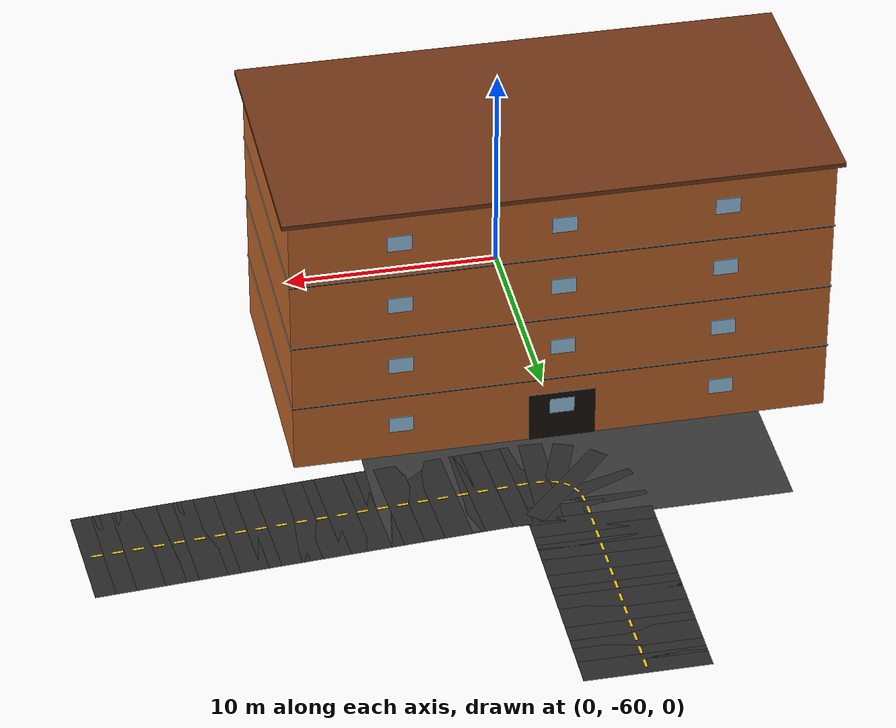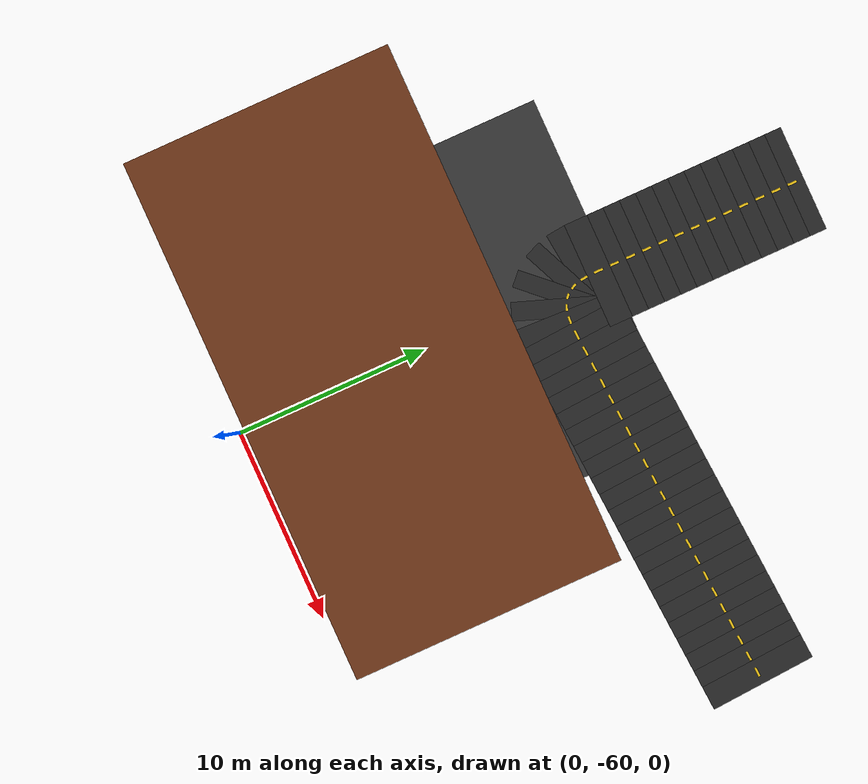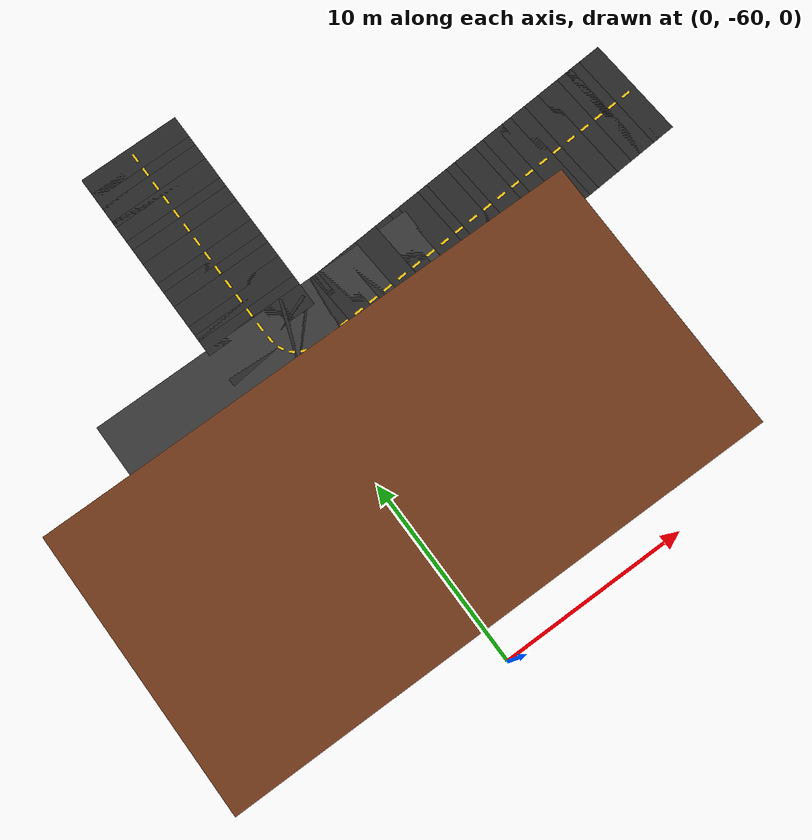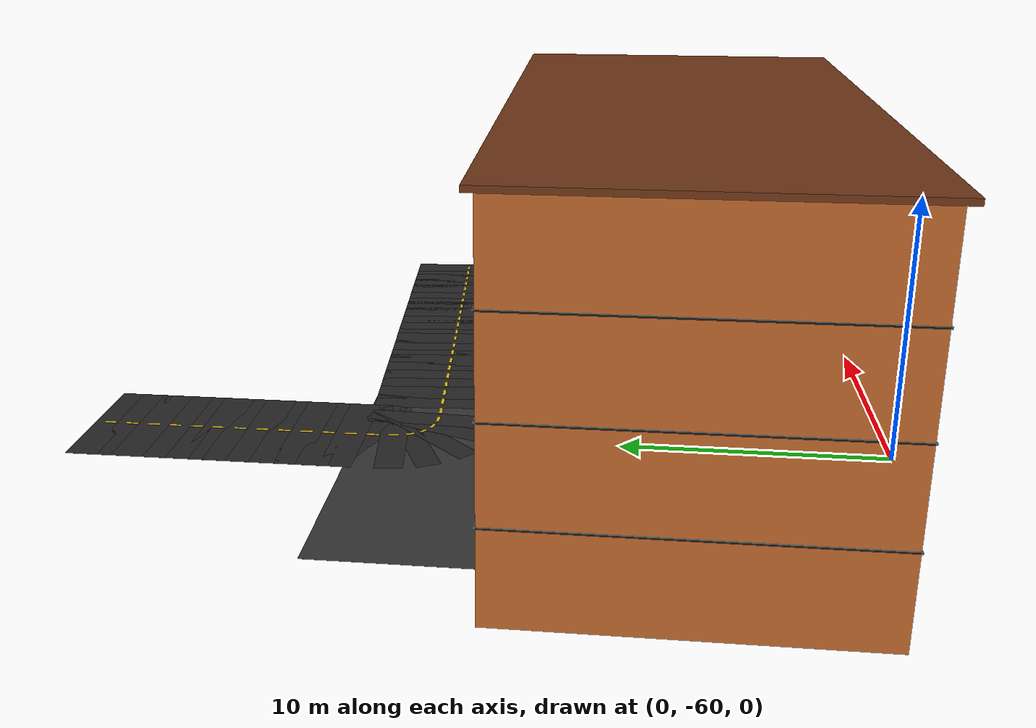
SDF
<sdf version="1.7">
 <world name="campus_delivery">
  <model name="campus_roads">
   <static>true</static>
   <link name="south_service_loop_0000">
    <pose>0.000 -40.562 0.002 0 0 1.570796</pose>
    <visual name="visual">
     <geometry><box><size>1.225 5.500 0.004</size></box></geometry>
     <material><ambient>0.160 0.160 0.160 1.000</ambient><diffuse>0.160 0.160 0.160 1.000</diffuse></material>
    </visual>
    <visual name="center_line">
     <pose>0 0 0.008 0 0 0</pose>
     <geometry><box><size>0.481 0.120 0.012</size></box></geometry>
     <material><ambient>0.950 0.780 0.080 1.000</ambient><diffuse>0.950 0.780 0.080 1.000</diffuse></material>
    </visual>
   </link>
   <link name="south_service_loop_0001">
    <pose>0.000 -39.688 0.002 0 0 1.570796</pose>
    <visual name="visual">
     <geometry><box><size>1.225 5.500 0.004</size></box></geometry>
     <material><ambient>0.160 0.160 0.160 1.000</ambient><diffuse>0.160 0.160 0.160 1.000</diffuse></material>
    </visual>
    <visual name="center_line">
     <pose>0 0 0.008 0 0 0</pose>
     <geometry><box><size>0.481 0.120 0.012</size></box></geometry>
     <material><ambient>0.950 0.780 0.080 1.000</ambient><diffuse>0.950 0.780 0.080 1.000</diffuse></material>
    </visual>
   </link>
   <link name="south_service_loop_0002">
    <pose>0.000 -38.812 0.002 0 0 1.570796</pose>
    <visual name="visual">
     <geometry><box><size>1.225 5.500 0.004</size></box></geometry>
     <material><ambient>0.160 0.160 0.160 1.000</ambient><diffuse>0.160 0.160 0.160 1.000</diffuse></material>
    </visual>
    <visual name="center_line">
     <pose>0 0 0.008 0 0 0</pose>
     <geometry><box><size>0.481 0.120 0.012</size></box></geometry>
     <material><ambient>0.950 0.780 0.080 1.000</ambient><diffuse>0.950 0.780 0.080 1.000</diffuse></material>
    </visual>
   </link>
   <link name="south_service_loop_0003">
    <pose>0.000 -37.938 0.002 0 0 1.570796</pose>
    <visual name="visual">
     <geometry><box><size>1.225 5.500 0.004</size></box></geometry>
     <material><ambient>0.160 0.160 0.160 1.000</ambient><diffuse>0.160 0.160 0.160 1.000</diffuse></material>
    </visual>
    <visual name="center_line">
     <pose>0 0 0.008 0 0 0</pose>
     <geometry><box><size>0.481 0.120 0.012</size></box></geometry>
     <material><ambient>0.950 0.780 0.080 1.000</ambient><diffuse>0.950 0.780 0.080 1.000</diffuse></material>
    </visual>
   </link>
   <link name="south_service_loop_0004">
    <pose>0.000 -37.062 0.002 0 0 1.570796</pose>
    <visual name="visual">
     <geometry><box><size>1.225 5.500 0.004</size></box></geometry>
     <material><ambient>0.160 0.160 0.160 1.000</ambient><diffuse>0.160 0.160 0.160 1.000</diffuse></material>
    </visual>
    <visual name="center_line">
     <pose>0 0 0.008 0 0 0</pose>
     <geometry><box><size>0.481 0.120 0.012</size></box></geometry>
     <material><ambient>0.950 0.780 0.080 1.000</ambient><diffuse>0.950 0.780 0.080 1.000</diffuse></material>
    </visual>
   </link>
   <link name="south_service_loop_0005">
    <pose>0.000 -36.188 0.002 0 0 1.570796</pose>
    <visual name="visual">
     <geometry><box><size>1.225 5.500 0.004</size></box></geometry>
     <material><ambient>0.160 0.160 0.160 1.000</ambient><diffuse>0.160 0.160 0.160 1.000</diffuse></material>
    </visual>
    <visual name="center_line">
     <pose>0 0 0.008 0 0 0</pose>
     <geometry><box><size>0.481 0.120 0.012</size></box></geometry>
     <material><ambient>0.950 0.780 0.080 1.000</ambient><diffuse>0.950 0.780 0.080 1.000</diffuse></material>
    </visual>
   </link>
   <link name="south_service_loop_0006">
    <pose>0.000 -35.312 0.002 0 0 1.570796</pose>
    <visual name="visual">
     <geometry><box><size>1.225 5.500 0.004</size></box></geometry>
     <material><ambient>0.160 0.160 0.160 1.000</ambient><diffuse>0.160 0.160 0.160 1.000</diffuse></material>
    </visual>
    <visual name="center_line">
     <pose>0 0 0.008 0 0 0</pose>
     <geometry><box><size>0.481 0.120 0.012</size></box></geometry>
     <material><ambient>0.950 0.780 0.080 1.000</ambient><diffuse>0.950 0.780 0.080 1.000</diffuse></material>
    </visual>
   </link>
   <link name="south_service_loop_0007">
    <pose>0.000 -34.438 0.002 0 0 1.570796</pose>
    <visual name="visual">
     <geometry><box><size>1.225 5.500 0.004</size></box></geometry>
     <material><ambient>0.160 0.160 0.160 1.000</ambient><diffuse>0.160 0.160 0.160 1.000</diffuse></material>
    </visual>
    <visual name="center_line">
     <pose>0 0 0.008 0 0 0</pose>
     <geometry><box><size>0.481 0.120 0.012</size></box></geometry>
     <material><ambient>0.950 0.780 0.080 1.000</ambient><diffuse>0.950 0.780 0.080 1.000</diffuse></material>
    </visual>
   </link>
   <link name="south_service_loop_0008">
    <pose>0.000 -33.562 0.002 0 0 1.570796</pose>
    <visual name="visual">
     <geometry><box><size>1.225 5.500 0.004</size></box></geometry>
     <material><ambient>0.160 0.160 0.160 1.000</ambient><diffuse>0.160 0.160 0.160 1.000</diffuse></material>
    </visual>
    <visual name="center_line">
     <pose>0 0 0.008 0 0 0</pose>
     <geometry><box><size>0.481 0.120 0.012</size></box></geometry>
     <material><ambient>0.950 0.780 0.080 1.000</ambient><diffuse>0.950 0.780 0.080 1.000</diffuse></material>
    </visual>
   </link>
   <link name="south_service_loop_0009">
    <pose>0.000 -32.688 0.002 0 0 1.570796</pose>
    <visual name="visual">
     <geometry><box><size>1.225 5.500 0.004</size></box></geometry>
     <material><ambient>0.160 0.160 0.160 1.000</ambient><diffuse>0.160 0.160 0.160 1.000</diffuse></material>
    </visual>
    <visual name="center_line">
     <pose>0 0 0.008 0 0 0</pose>
     <geometry><box><size>0.481 0.120 0.012</size></box></geometry>
     <material><ambient>0.950 0.780 0.080 1.000</ambient><diffuse>0.950 0.780 0.080 1.000</diffuse></material>
    </visual>
   </link>
   <link name="south_service_loop_0010">
    <pose>0.000 -31.812 0.002 0 0 1.570796</pose>
    <visual name="visual">
     <geometry><box><size>1.225 5.500 0.004</size></box></geometry>
     <material><ambient>0.160 0.160 0.160 1.000</ambient><diffuse>0.160 0.160 0.160 1.000</diffuse></material>
    </visual>
    <visual name="center_line">
     <pose>0 0 0.008 0 0 0</pose>
     <geometry><box><size>0.481 0.120 0.012</size></box></geometry>
     <material><ambient>0.950 0.780 0.080 1.000</ambient><diffuse>0.950 0.780 0.080 1.000</diffuse></material>
    </visual>
   </link>
   <link name="south_service_loop_0011">
    <pose>0.000 -30.938 0.002 0 0 1.570796</pose>
    <visual name="visual">
     <geometry><box><size>1.225 5.500 0.004</size></box></geometry>
     <material><ambient>0.160 0.160 0.160 1.000</ambient><diffuse>0.160 0.160 0.160 1.000</diffuse></material>
    </visual>
    <visual name="center_line">
     <pose>0 0 0.008 0 0 0</pose>
     <geometry><box><size>0.481 0.120 0.012</size></box></geometry>
     <material><ambient>0.950 0.780 0.080 1.000</ambient><diffuse>0.950 0.780 0.080 1.000</diffuse></material>
    </visual>
   </link>
   <link name="south_service_loop_0012">
    <pose>0.000 -30.062 0.002 0 0 1.570796</pose>
    <visual name="visual">
     <geometry><box><size>1.225 5.500 0.004</size></box></geometry>
     <material><ambient>0.160 0.160 0.160 1.000</ambient><diffuse>0.160 0.160 0.160 1.000</diffuse></material>
    </visual>
    <visual name="center_line">
     <pose>0 0 0.008 0 0 0</pose>
     <geometry><box><size>0.481 0.120 0.012</size></box></geometry>
     <material><ambient>0.950 0.780 0.080 1.000</ambient><diffuse>0.950 0.780 0.080 1.000</diffuse></material>
    </visual>
   </link>
   <link name="south_service_loop_0157">
    <pose>21.278 -41.581 0.002 0 0 -3.075024</pose>
    <visual name="visual">
     <geometry><box><size>1.249 5.500 0.004</size></box></geometry>
     <material><ambient>0.160 0.160 0.160 1.000</ambient><diffuse>0.160 0.160 0.160 1.000</diffuse></material>
    </visual>
    <visual name="center_line">
     <pose>0 0 0.008 0 0 0</pose>
     <geometry><box><size>0.494 0.120 0.012</size></box></geometry>
     <material><ambient>0.950 0.780 0.080 1.000</ambient><diffuse>0.950 0.780 0.080 1.000</diffuse></material>
    </visual>
   </link>
   <link name="south_service_loop_0158">
    <pose>20.381 -41.641 0.002 0 0 -3.075024</pose>
    <visual name="visual">
     <geometry><box><size>1.249 5.500 0.004</size></box></geometry>
     <material><ambient>0.160 0.160 0.160 1.000</ambient><diffuse>0.160 0.160 0.160 1.000</diffuse></material>
    </visual>
    <visual name="center_line">
     <pose>0 0 0.008 0 0 0</pose>
     <geometry><box><size>0.494 0.120 0.012</size></box></geometry>
     <material><ambient>0.950 0.780 0.080 1.000</ambient><diffuse>0.950 0.780 0.080 1.000</diffuse></material>
    </visual>
   </link>
   <link name="south_service_loop_0159">
    <pose>19.484 -41.701 0.002 0 0 -3.075024</pose>
    <visual name="visual">
     <geometry><box><size>1.249 5.500 0.004</size></box></geometry>
     <material><ambient>0.160 0.160 0.160 1.000</ambient><diffuse>0.160 0.160 0.160 1.000</diffuse></material>
    </visual>
    <visual name="center_line">
     <pose>0 0 0.008 0 0 0</pose>
     <geometry><box><size>0.494 0.120 0.012</size></box></geometry>
     <material><ambient>0.950 0.780 0.080 1.000</ambient><diffuse>0.950 0.780 0.080 1.000</diffuse></material>
    </visual>
   </link>
   <link name="south_service_loop_0160">
    <pose>18.587 -41.761 0.002 0 0 -3.075024</pose>
    <visual name="visual">
     <geometry><box><size>1.249 5.500 0.004</size></box></geometry>
     <material><ambient>0.160 0.160 0.160 1.000</ambient><diffuse>0.160 0.160 0.160 1.000</diffuse></material>
    </visual>
    <visual name="center_line">
     <pose>0 0 0.008 0 0 0</pose>
     <geometry><box><size>0.494 0.120 0.012</size></box></geometry>
     <material><ambient>0.950 0.780 0.080 1.000</ambient><diffuse>0.950 0.780 0.080 1.000</diffuse></material>
    </visual>
   </link>
   <link name="south_service_loop_0161">
    <pose>17.691 -41.821 0.002 0 0 -3.075024</pose>
    <visual name="visual">
     <geometry><box><size>1.249 5.500 0.004</size></box></geometry>
     <material><ambient>0.160 0.160 0.160 1.000</ambient><diffuse>0.160 0.160 0.160 1.000</diffuse></material>
    </visual>
    <visual name="center_line">
     <pose>0 0 0.008 0 0 0</pose>
     <geometry><box><size>0.494 0.120 0.012</size></box></geometry>
     <material><ambient>0.950 0.780 0.080 1.000</ambient><diffuse>0.950 0.780 0.080 1.000</diffuse></material>
    </visual>
   </link>
   <link name="south_service_loop_0162">
    <pose>16.794 -41.880 0.002 0 0 -3.075024</pose>
    <visual name="visual">
     <geometry><box><size>1.249 5.500 0.004</size></box></geometry>
     <material><ambient>0.160 0.160 0.160 1.000</ambient><diffuse>0.160 0.160 0.160 1.000</diffuse></material>
    </visual>
    <visual name="center_line">
     <pose>0 0 0.008 0 0 0</pose>
     <geometry><box><size>0.494 0.120 0.012</size></box></geometry>
     <material><ambient>0.950 0.780 0.080 1.000</ambient><diffuse>0.950 0.780 0.080 1.000</diffuse></material>
    </visual>
   </link>
   <link name="south_service_loop_0163">
    <pose>15.897 -41.940 0.002 0 0 -3.075024</pose>
    <visual name="visual">
     <geometry><box><size>1.249 5.500 0.004</size></box></geometry>
     <material><ambient>0.160 0.160 0.160 1.000</ambient><diffuse>0.160 0.160 0.160 1.000</diffuse></material>
    </visual>
    <visual name="center_line">
     <pose>0 0 0.008 0 0 0</pose>
     <geometry><box><size>0.494 0.120 0.012</size></box></geometry>
     <material><ambient>0.950 0.780 0.080 1.000</ambient><diffuse>0.950 0.780 0.080 1.000</diffuse></material>
    </visual>
   </link>
   <link name="south_service_loop_0164">
    <pose>15.000 -42.000 0.002 0 0 -3.075024</pose>
    <visual name="visual">
     <geometry><box><size>1.249 5.500 0.004</size></box></geometry>
     <material><ambient>0.160 0.160 0.160 1.000</ambient><diffuse>0.160 0.160 0.160 1.000</diffuse></material>
    </visual>
    <visual name="center_line">
     <pose>0 0 0.008 0 0 0</pose>
     <geometry><box><size>0.494 0.120 0.012</size></box></geometry>
     <material><ambient>0.950 0.780 0.080 1.000</ambient><diffuse>0.950 0.780 0.080 1.000</diffuse></material>
    </visual>
   </link>
   <link name="south_service_loop_0165">
    <pose>14.103 -42.060 0.002 0 0 -3.075024</pose>
    <visual name="visual">
     <geometry><box><size>1.249 5.500 0.004</size></box></geometry>
     <material><ambient>0.160 0.160 0.160 1.000</ambient><diffuse>0.160 0.160 0.160 1.000</diffuse></material>
    </visual>
    <visual name="center_line">
     <pose>0 0 0.008 0 0 0</pose>
     <geometry><box><size>0.494 0.120 0.012</size></box></geometry>
     <material><ambient>0.950 0.780 0.080 1.000</ambient><diffuse>0.950 0.780 0.080 1.000</diffuse></material>
    </visual>
   </link>
   <link name="south_service_loop_0166">
    <pose>13.206 -42.120 0.002 0 0 -3.075024</pose>
    <visual name="visual">
     <geometry><box><size>1.249 5.500 0.004</size></box></geometry>
     <material><ambient>0.160 0.160 0.160 1.000</ambient><diffuse>0.160 0.160 0.160 1.000</diffuse></material>
    </visual>
    <visual name="center_line">
     <pose>0 0 0.008 0 0 0</pose>
     <geometry><box><size>0.494 0.120 0.012</size></box></geometry>
     <material><ambient>0.950 0.780 0.080 1.000</ambient><diffuse>0.950 0.780 0.080 1.000</diffuse></material>
    </visual>
   </link>
   <link name="south_service_loop_0167">
    <pose>12.309 -42.179 0.002 0 0 -3.075024</pose>
    <visual name="visual">
     <geometry><box><size>1.249 5.500 0.004</size></box></geometry>
     <material><ambient>0.160 0.160 0.160 1.000</ambient><diffuse>0.160 0.160 0.160 1.000</diffuse></material>
    </visual>
    <visual name="center_line">
     <pose>0 0 0.008 0 0 0</pose>
     <geometry><box><size>0.494 0.120 0.012</size></box></geometry>
     <material><ambient>0.950 0.780 0.080 1.000</ambient><diffuse>0.950 0.780 0.080 1.000</diffuse></material>
    </visual>
   </link>
   <link name="south_service_loop_0168">
    <pose>11.413 -42.239 0.002 0 0 -3.075024</pose>
    <visual name="visual">
     <geometry><box><size>1.249 5.500 0.004</size></box></geometry>
     <material><ambient>0.160 0.160 0.160 1.000</ambient><diffuse>0.160 0.160 0.160 1.000</diffuse></material>
    </visual>
    <visual name="center_line">
     <pose>0 0 0.008 0 0 0</pose>
     <geometry><box><size>0.494 0.120 0.012</size></box></geometry>
     <material><ambient>0.950 0.780 0.080 1.000</ambient><diffuse>0.950 0.780 0.080 1.000</diffuse></material>
    </visual>
   </link>
   <link name="south_service_loop_0169">
    <pose>10.516 -42.299 0.002 0 0 -3.075024</pose>
    <visual name="visual">
     <geometry><box><size>1.249 5.500 0.004</size></box></geometry>
     <material><ambient>0.160 0.160 0.160 1.000</ambient><diffuse>0.160 0.160 0.160 1.000</diffuse></material>
    </visual>
    <visual name="center_line">
     <pose>0 0 0.008 0 0 0</pose>
     <geometry><box><size>0.494 0.120 0.012</size></box></geometry>
     <material><ambient>0.950 0.780 0.080 1.000</ambient><diffuse>0.950 0.780 0.080 1.000</diffuse></material>
    </visual>
   </link>
   <link name="south_service_loop_0170">
    <pose>9.619 -42.359 0.002 0 0 -3.075024</pose>
    <visual name="visual">
     <geometry><box><size>1.249 5.500 0.004</size></box></geometry>
     <material><ambient>0.160 0.160 0.160 1.000</ambient><diffuse>0.160 0.160 0.160 1.000</diffuse></material>
    </visual>
    <visual name="center_line">
     <pose>0 0 0.008 0 0 0</pose>
     <geometry><box><size>0.494 0.120 0.012</size></box></geometry>
     <material><ambient>0.950 0.780 0.080 1.000</ambient><diffuse>0.950 0.780 0.080 1.000</diffuse></material>
    </visual>
   </link>
   <link name="south_service_loop_0171">
    <pose>8.722 -42.419 0.002 0 0 -3.075024</pose>
    <visual name="visual">
     <geometry><box><size>1.249 5.500 0.004</size></box></geometry>
     <material><ambient>0.160 0.160 0.160 1.000</ambient><diffuse>0.160 0.160 0.160 1.000</diffuse></material>
    </visual>
    <visual name="center_line">
     <pose>0 0 0.008 0 0 0</pose>
     <geometry><box><size>0.494 0.120 0.012</size></box></geometry>
     <material><ambient>0.950 0.780 0.080 1.000</ambient><diffuse>0.950 0.780 0.080 1.000</diffuse></material>
    </visual>
   </link>
   <link name="south_service_loop_0172">
    <pose>7.825 -42.478 0.002 0 0 -3.075024</pose>
    <visual name="visual">
     <geometry><box><size>1.249 5.500 0.004</size></box></geometry>
     <material><ambient>0.160 0.160 0.160 1.000</ambient><diffuse>0.160 0.160 0.160 1.000</diffuse></material>
    </visual>
    <visual name="center_line">
     <pose>0 0 0.008 0 0 0</pose>
     <geometry><box><size>0.494 0.120 0.012</size></box></geometry>
     <material><ambient>0.950 0.780 0.080 1.000</ambient><diffuse>0.950 0.780 0.080 1.000</diffuse></material>
    </visual>
   </link>
   <link name="south_service_loop_0173">
    <pose>6.928 -42.538 0.002 0 0 -3.075024</pose>
    <visual name="visual">
     <geometry><box><size>1.249 5.500 0.004</size></box></geometry>
     <material><ambient>0.160 0.160 0.160 1.000</ambient><diffuse>0.160 0.160 0.160 1.000</diffuse></material>
    </visual>
    <visual name="center_line">
     <pose>0 0 0.008 0 0 0</pose>
     <geometry><box><size>0.494 0.120 0.012</size></box></geometry>
     <material><ambient>0.950 0.780 0.080 1.000</ambient><diffuse>0.950 0.780 0.080 1.000</diffuse></material>
    </visual>
   </link>
   <link name="south_service_loop_0174">
    <pose>6.031 -42.598 0.002 0 0 -3.075024</pose>
    <visual name="visual">
     <geometry><box><size>1.249 5.500 0.004</size></box></geometry>
     <material><ambient>0.160 0.160 0.160 1.000</ambient><diffuse>0.160 0.160 0.160 1.000</diffuse></material>
    </visual>
    <visual name="center_line">
     <pose>0 0 0.008 0 0 0</pose>
     <geometry><box><size>0.494 0.120 0.012</size></box></geometry>
     <material><ambient>0.950 0.780 0.080 1.000</ambient><diffuse>0.950 0.780 0.080 1.000</diffuse></material>
    </visual>
   </link>
   <link name="south_service_loop_0175">
    <pose>5.135 -42.658 0.002 0 0 -3.075024</pose>
    <visual name="visual">
     <geometry><box><size>1.249 5.500 0.004</size></box></geometry>
     <material><ambient>0.160 0.160 0.160 1.000</ambient><diffuse>0.160 0.160 0.160 1.000</diffuse></material>
    </visual>
    <visual name="center_line">
     <pose>0 0 0.008 0 0 0</pose>
     <geometry><box><size>0.494 0.120 0.012</size></box></geometry>
     <material><ambient>0.950 0.780 0.080 1.000</ambient><diffuse>0.950 0.780 0.080 1.000</diffuse></material>
    </visual>
   </link>
   <link name="south_service_loop_0176">
    <pose>4.238 -42.717 0.002 0 0 -3.075024</pose>
    <visual name="visual">
     <geometry><box><size>1.249 5.500 0.004</size></box></geometry>
     <material><ambient>0.160 0.160 0.160 1.000</ambient><diffuse>0.160 0.160 0.160 1.000</diffuse></material>
    </visual>
    <visual name="center_line">
     <pose>0 0 0.008 0 0 0</pose>
     <geometry><box><size>0.494 0.120 0.012</size></box></geometry>
     <material><ambient>0.950 0.780 0.080 1.000</ambient><diffuse>0.950 0.780 0.080 1.000</diffuse></material>
    </visual>
   </link>
   <link name="south_service_loop_0177">
    <pose>3.341 -42.777 0.002 0 0 -3.075024</pose>
    <visual name="visual">
     <geometry><box><size>1.249 5.500 0.004</size></box></geometry>
     <material><ambient>0.160 0.160 0.160 1.000</ambient><diffuse>0.160 0.160 0.160 1.000</diffuse></material>
    </visual>
    <visual name="center_line">
     <pose>0 0 0.008 0 0 0</pose>
     <geometry><box><size>0.494 0.120 0.012</size></box></geometry>
     <material><ambient>0.950 0.780 0.080 1.000</ambient><diffuse>0.950 0.780 0.080 1.000</diffuse></material>
    </visual>
   </link>
   <link name="south_service_loop_0178">
    <pose>2.444 -42.837 0.002 0 0 -3.075024</pose>
    <visual name="visual">
     <geometry><box><size>1.249 5.500 0.004</size></box></geometry>
     <material><ambient>0.160 0.160 0.160 1.000</ambient><diffuse>0.160 0.160 0.160 1.000</diffuse></material>
    </visual>
    <visual name="center_line">
     <pose>0 0 0.008 0 0 0</pose>
     <geometry><box><size>0.494 0.120 0.012</size></box></geometry>
     <material><ambient>0.950 0.780 0.080 1.000</ambient><diffuse>0.950 0.780 0.080 1.000</diffuse></material>
    </visual>
   </link>
   <link name="south_service_loop_0179">
    <pose>1.636 -42.851 0.002 0 0 3.096931</pose>
    <visual name="visual">
     <geometry><box><size>1.069 5.500 0.004</size></box></geometry>
     <material><ambient>0.160 0.160 0.160 1.000</ambient><diffuse>0.160 0.160 0.160 1.000</diffuse></material>
    </visual>
    <visual name="center_line">
     <pose>0 0 0.008 0 0 0</pose>
     <geometry><box><size>0.396 0.120 0.012</size></box></geometry>
     <material><ambient>0.950 0.780 0.080 1.000</ambient><diffuse>0.950 0.780 0.080 1.000</diffuse></material>
    </visual>
   </link>
   <link name="south_service_loop_0180">
    <pose>0.998 -42.733 0.002 0 0 2.793511</pose>
    <visual name="visual">
     <geometry><box><size>0.944 5.500 0.004</size></box></geometry>
     <material><ambient>0.160 0.160 0.160 1.000</ambient><diffuse>0.160 0.160 0.160 1.000</diffuse></material>
    </visual>
    <visual name="center_line">
     <pose>0 0 0.008 0 0 0</pose>
     <geometry><box><size>0.327 0.120 0.012</size></box></geometry>
     <material><ambient>0.950 0.780 0.080 1.000</ambient><diffuse>0.950 0.780 0.080 1.000</diffuse></material>
    </visual>
   </link>
   <link name="south_service_loop_0181">
    <pose>0.519 -42.445 0.002 0 0 2.389479</pose>
    <visual name="visual">
     <geometry><box><size>0.897 5.500 0.004</size></box></geometry>
     <material><ambient>0.160 0.160 0.160 1.000</ambient><diffuse>0.160 0.160 0.160 1.000</diffuse></material>
    </visual>
    <visual name="center_line">
     <pose>0 0 0.008 0 0 0</pose>
     <geometry><box><size>0.301 0.120 0.012</size></box></geometry>
     <material><ambient>0.950 0.780 0.080 1.000</ambient><diffuse>0.950 0.780 0.080 1.000</diffuse></material>
    </visual>
   </link>
   <link name="south_service_loop_0182">
    <pose>0.200 -41.987 0.002 0 0 1.985446</pose>
    <visual name="visual">
     <geometry><box><size>0.944 5.500 0.004</size></box></geometry>
     <material><ambient>0.160 0.160 0.160 1.000</ambient><diffuse>0.160 0.160 0.160 1.000</diffuse></material>
    </visual>
    <visual name="center_line">
     <pose>0 0 0.008 0 0 0</pose>
     <geometry><box><size>0.327 0.120 0.012</size></box></geometry>
     <material><ambient>0.950 0.780 0.080 1.000</ambient><diffuse>0.950 0.780 0.080 1.000</diffuse></material>
    </visual>
   </link>
   <link name="south_service_loop_0183">
    <pose>0.040 -41.357 0.002 0 0 1.682026</pose>
    <visual name="visual">
     <geometry><box><size>1.069 5.500 0.004</size></box></geometry>
     <material><ambient>0.160 0.160 0.160 1.000</ambient><diffuse>0.160 0.160 0.160 1.000</diffuse></material>
    </visual>
    <visual name="center_line">
     <pose>0 0 0.008 0 0 0</pose>
     <geometry><box><size>0.396 0.120 0.012</size></box></geometry>
     <material><ambient>0.950 0.780 0.080 1.000</ambient><diffuse>0.950 0.780 0.080 1.000</diffuse></material>
    </visual>
   </link>
   <link name="logistics_loading_platform">
    <pose>0.000 -43.000 0.002 0 0 0</pose>
    <visual name="visual">
     <geometry><box><size>18.000 6.000 0.004</size></box></geometry>
     <material><ambient>0.220 0.220 0.220 1.000</ambient><diffuse>0.220 0.220 0.220 1.000</diffuse></material>
    </visual>
   </link>
  </model>
  <model name="logistics_center">
   <static>true</static>
   <pose>0.000 -52.000 0 0 0 0</pose>
   <link name="body">
    <visual name="body">
     <pose>0 0 6.400 0 0 0</pose>
     <geometry><box><size>24.000 12.000 12.800</size></box></geometry>
     <material><ambient>0.780 0.420 0.180 1.000</ambient><diffuse>0.780 0.420 0.180 1.000</diffuse></material>
    </visual>
    <collision name="body_collision">
     <pose>0 0 6.400 0 0 0</pose>
     <geometry><box><size>24.000 12.000 12.800</size></box></geometry>
    </collision>
    <visual name="roof">
     <pose>0 0 12.900 0 0 0</pose>
     <geometry><box><size>24.600 12.600 0.200</size></box></geometry>
     <material><ambient>0.450 0.220 0.100 1.000</ambient><diffuse>0.450 0.220 0.100 1.000</diffuse></material>
    </visual>
    <visual name="floor_sep_n_1">
     <pose>0 6.018 3.200 0 0 0</pose>
     <geometry><box><size>24.100 0.035 0.060</size></box></geometry>
     <material><ambient>0.080 0.080 0.080 1.000</ambient><diffuse>0.080 0.080 0.080 1.000</diffuse></material>
    </visual>
    <visual name="floor_sep_s_1">
     <pose>0 -6.018 3.200 0 0 0</pose>
     <geometry><box><size>24.100 0.035 0.060</size></box></geometry>
     <material><ambient>0.080 0.080 0.080 1.000</ambient><diffuse>0.080 0.080 0.080 1.000</diffuse></material>
    </visual>
    <visual name="floor_sep_e_1">
     <pose>12.018 0 3.200 0 0 0</pose>
     <geometry><box><size>0.035 12.100 0.060</size></box></geometry>
     <material><ambient>0.080 0.080 0.080 1.000</ambient><diffuse>0.080 0.080 0.080 1.000</diffuse></material>
    </visual>
    <visual name="floor_sep_w_1">
     <pose>-12.018 0 3.200 0 0 0</pose>
     <geometry><box><size>0.035 12.100 0.060</size></box></geometry>
     <material><ambient>0.080 0.080 0.080 1.000</ambient><diffuse>0.080 0.080 0.080 1.000</diffuse></material>
    </visual>
    <visual name="floor_sep_n_2">
     <pose>0 6.018 6.400 0 0 0</pose>
     <geometry><box><size>24.100 0.035 0.060</size></box></geometry>
     <material><ambient>0.080 0.080 0.080 1.000</ambient><diffuse>0.080 0.080 0.080 1.000</diffuse></material>
    </visual>
    <visual name="floor_sep_s_2">
     <pose>0 -6.018 6.400 0 0 0</pose>
     <geometry><box><size>24.100 0.035 0.060</size></box></geometry>
     <material><ambient>0.080 0.080 0.080 1.000</ambient><diffuse>0.080 0.080 0.080 1.000</diffuse></material>
    </visual>
    <visual name="floor_sep_e_2">
     <pose>12.018 0 6.400 0 0 0</pose>
     <geometry><box><size>0.035 12.100 0.060</size></box></geometry>
     <material><ambient>0.080 0.080 0.080 1.000</ambient><diffuse>0.080 0.080 0.080 1.000</diffuse></material>
    </visual>
    <visual name="floor_sep_w_2">
     <pose>-12.018 0 6.400 0 0 0</pose>
     <geometry><box><size>0.035 12.100 0.060</size></box></geometry>
     <material><ambient>0.080 0.080 0.080 1.000</ambient><diffuse>0.080 0.080 0.080 1.000</diffuse></material>
    </visual>
    <visual name="floor_sep_n_3">
     <pose>0 6.018 9.600 0 0 0</pose>
     <geometry><box><size>24.100 0.035 0.060</size></box></geometry>
     <material><ambient>0.080 0.080 0.080 1.000</ambient><diffuse>0.080 0.080 0.080 1.000</diffuse></material>
    </visual>
    <visual name="floor_sep_s_3">
     <pose>0 -6.018 9.600 0 0 0</pose>
     <geometry><box><size>24.100 0.035 0.060</size></box></geometry>
     <material><ambient>0.080 0.080 0.080 1.000</ambient><diffuse>0.080 0.080 0.080 1.000</diffuse></material>
    </visual>
    <visual name="floor_sep_e_3">
     <pose>12.018 0 9.600 0 0 0</pose>
     <geometry><box><size>0.035 12.100 0.060</size></box></geometry>
     <material><ambient>0.080 0.080 0.080 1.000</ambient><diffuse>0.080 0.080 0.080 1.000</diffuse></material>
    </visual>
    <visual name="floor_sep_w_3">
     <pose>-12.018 0 9.600 0 0 0</pose>
     <geometry><box><size>0.035 12.100 0.060</size></box></geometry>
     <material><ambient>0.080 0.080 0.080 1.000</ambient><diffuse>0.080 0.080 0.080 1.000</diffuse></material>
    </visual>
    <visual name="front_door">
     <pose>0 6.012 1.2 0 0 0</pose>
     <geometry><box><size>3.000 0.050 2.400</size></box></geometry>
     <material><ambient>0.080 0.060 0.040 1.000</ambient><diffuse>0.080 0.060 0.040 1.000</diffuse></material>
    </visual>
    <visual name="win_n_1_-7.2">
     <pose>-7.200 6.020 1.700 0 0 0</pose>
     <geometry><box><size>1.100 0.035 0.750</size></box></geometry>
     <material><ambient>0.620 0.820 0.950 1.000</ambient><diffuse>0.620 0.820 0.950 1.000</diffuse></material>
    </visual>
    <visual name="win_s_1_-7.2">
     <pose>-7.200 -6.020 1.700 0 0 0</pose>
     <geometry><box><size>1.100 0.035 0.750</size></box></geometry>
     <material><ambient>0.620 0.820 0.950 1.000</ambient><diffuse>0.620 0.820 0.950 1.000</diffuse></material>
    </visual>
    <visual name="win_n_1_0.0">
     <pose>0.000 6.020 1.700 0 0 0</pose>
     <geometry><box><size>1.100 0.035 0.750</size></box></geometry>
     <material><ambient>0.620 0.820 0.950 1.000</ambient><diffuse>0.620 0.820 0.950 1.000</diffuse></material>
    </visual>
    <visual name="win_s_1_0.0">
     <pose>0.000 -6.020 1.700 0 0 0</pose>
     <geometry><box><size>1.100 0.035 0.750</size></box></geometry>
     <material><ambient>0.620 0.820 0.950 1.000</ambient><diffuse>0.620 0.820 0.950 1.000</diffuse></material>
    </visual>
    <visual name="win_n_1_7.2">
     <pose>7.200 6.020 1.700 0 0 0</pose>
     <geometry><box><size>1.100 0.035 0.750</size></box></geometry>
     <material><ambient>0.620 0.820 0.950 1.000</ambient><diffuse>0.620 0.820 0.950 1.000</diffuse></material>
    </visual>
    <visual name="win_s_1_7.2">
     <pose>7.200 -6.020 1.700 0 0 0</pose>
     <geometry><box><size>1.100 0.035 0.750</size></box></geometry>
     <material><ambient>0.620 0.820 0.950 1.000</ambient><diffuse>0.620 0.820 0.950 1.000</diffuse></material>
    </visual>
    <visual name="win_n_2_-7.2">
     <pose>-7.200 6.020 4.900 0 0 0</pose>
     <geometry><box><size>1.100 0.035 0.750</size></box></geometry>
     <material><ambient>0.620 0.820 0.950 1.000</ambient><diffuse>0.620 0.820 0.950 1.000</diffuse></material>
    </visual>
    <visual name="win_s_2_-7.2">
     <pose>-7.200 -6.020 4.900 0 0 0</pose>
     <geometry><box><size>1.100 0.035 0.750</size></box></geometry>
     <material><ambient>0.620 0.820 0.950 1.000</ambient><diffuse>0.620 0.820 0.950 1.000</diffuse></material>
    </visual>
    <visual name="win_n_2_0.0">
     <pose>0.000 6.020 4.900 0 0 0</pose>
     <geometry><box><size>1.100 0.035 0.750</size></box></geometry>
     <material><ambient>0.620 0.820 0.950 1.000</ambient><diffuse>0.620 0.820 0.950 1.000</diffuse></material>
    </visual>
    <visual name="win_s_2_0.0">
     <pose>0.000 -6.020 4.900 0 0 0</pose>
     <geometry><box><size>1.100 0.035 0.750</size></box></geometry>
     <material><ambient>0.620 0.820 0.950 1.000</ambient><diffuse>0.620 0.820 0.950 1.000</diffuse></material>
    </visual>
    <visual name="win_n_2_7.2">
     <pose>7.200 6.020 4.900 0 0 0</pose>
     <geometry><box><size>1.100 0.035 0.750</size></box></geometry>
     <material><ambient>0.620 0.820 0.950 1.000</ambient><diffuse>0.620 0.820 0.950 1.000</diffuse></material>
    </visual>
    <visual name="win_s_2_7.2">
     <pose>7.200 -6.020 4.900 0 0 0</pose>
     <geometry><box><size>1.100 0.035 0.750</size></box></geometry>
     <material><ambient>0.620 0.820 0.950 1.000</ambient><diffuse>0.620 0.820 0.950 1.000</diffuse></material>
    </visual>
    <visual name="win_n_3_-7.2">
     <pose>-7.200 6.020 8.100 0 0 0</pose>
     <geometry><box><size>1.100 0.035 0.750</size></box></geometry>
     <material><ambient>0.620 0.820 0.950 1.000</ambient><diffuse>0.620 0.820 0.950 1.000</diffuse></material>
    </visual>
    <visual name="win_s_3_-7.2">
     <pose>-7.200 -6.020 8.100 0 0 0</pose>
     <geometry><box><size>1.100 0.035 0.750</size></box></geometry>
     <material><ambient>0.620 0.820 0.950 1.000</ambient><diffuse>0.620 0.820 0.950 1.000</diffuse></material>
    </visual>
    <visual name="win_n_3_0.0">
     <pose>0.000 6.020 8.100 0 0 0</pose>
     <geometry><box><size>1.100 0.035 0.750</size></box></geometry>
     <material><ambient>0.620 0.820 0.950 1.000</ambient><diffuse>0.620 0.820 0.950 1.000</diffuse></material>
    </visual>
    <visual name="win_s_3_0.0">
     <pose>0.000 -6.020 8.100 0 0 0</pose>
     <geometry><box><size>1.100 0.035 0.750</size></box></geometry>
     <material><ambient>0.620 0.820 0.950 1.000</ambient><diffuse>0.620 0.820 0.950 1.000</diffuse></material>
    </visual>
    <visual name="win_n_3_7.2">
     <pose>7.200 6.020 8.100 0 0 0</pose>
     <geometry><box><size>1.100 0.035 0.750</size></box></geometry>
     <material><ambient>0.620 0.820 0.950 1.000</ambient><diffuse>0.620 0.820 0.950 1.000</diffuse></material>
    </visual>
    <visual name="win_s_3_7.2">
     <pose>7.200 -6.020 8.100 0 0 0</pose>
     <geometry><box><size>1.100 0.035 0.750</size></box></geometry>
     <material><ambient>0.620 0.820 0.950 1.000</ambient><diffuse>0.620 0.820 0.950 1.000</diffuse></material>
    </visual>
    <visual name="win_n_4_-7.2">
     <pose>-7.200 6.020 11.300 0 0 0</pose>
     <geometry><box><size>1.100 0.035 0.750</size></box></geometry>
     <material><ambient>0.620 0.820 0.950 1.000</ambient><diffuse>0.620 0.820 0.950 1.000</diffuse></material>
    </visual>
    <visual name="win_s_4_-7.2">
     <pose>-7.200 -6.020 11.300 0 0 0</pose>
     <geometry><box><size>1.100 0.035 0.750</size></box></geometry>
     <material><ambient>0.620 0.820 0.950 1.000</ambient><diffuse>0.620 0.820 0.950 1.000</diffuse></material>
    </visual>
    <visual name="win_n_4_0.0">
     <pose>0.000 6.020 11.300 0 0 0</pose>
     <geometry><box><size>1.100 0.035 0.750</size></box></geometry>
     <material><ambient>0.620 0.820 0.950 1.000</ambient><diffuse>0.620 0.820 0.950 1.000</diffuse></material>
    </visual>
    <visual name="win_s_4_0.0">
     <pose>0.000 -6.020 11.300 0 0 0</pose>
     <geometry><box><size>1.100 0.035 0.750</size></box></geometry>
     <material><ambient>0.620 0.820 0.950 1.000</ambient><diffuse>0.620 0.820 0.950 1.000</diffuse></material>
    </visual>
    <visual name="win_n_4_7.2">
     <pose>7.200 6.020 11.300 0 0 0</pose>
     <geometry><box><size>1.100 0.035 0.750</size></box></geometry>
     <material><ambient>0.620 0.820 0.950 1.000</ambient><diffuse>0.620 0.820 0.950 1.000</diffuse></material>
    </visual>
    <visual name="win_s_4_7.2">
     <pose>7.200 -6.020 11.300 0 0 0</pose>
     <geometry><box><size>1.100 0.035 0.750</size></box></geometry>
     <material><ambient>0.620 0.820 0.950 1.000</ambient><diffuse>0.620 0.820 0.950 1.000</diffuse></material>
    </visual>
   </link>
  </model>
 </world>
</sdf>
